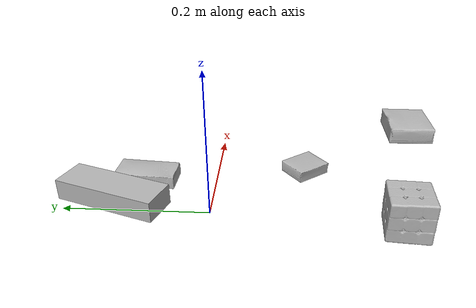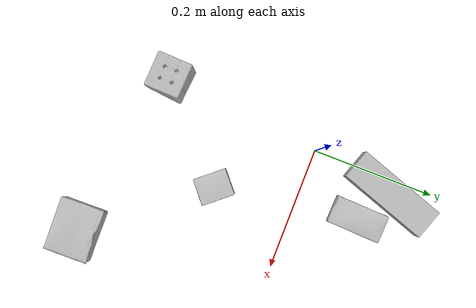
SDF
<sdf version="1.4">
  <world name="default">
    <light name="light1" type="point">
      <pose>0 0 1 0 0 0</pose>
      <diffuse>3 3 3 1</diffuse>
      <specular>3 3 3 1</specular>
    </light>
    <light name="light2" type="point">
      <pose>0 0.5 2 0 0 0</pose>
      <diffuse>1 1 1 1</diffuse>
      <specular>1 1 1 1</specular>
    </light>
    <light name="light3" type="point">
      <pose>0 0.5 2 0 0 0</pose>
      <diffuse>3 3 3 1</diffuse>
      <specular>3 3 3 1</specular>
    </light>
    <scene>
      <ambient>0.7 0.7 0.7</ambient>
    </scene>
    <model name="box1">
      <link name="link_box1">
        <collision name="default">
          <geometry>
            <mesh>
              <uri>model://jenga/collision_meshes/collision.obj</uri>
              <scale>1.0 1.0 1.0</scale>
            </mesh>
          </geometry>
          <surface>
            <friction>
              <ode>
                <mu>0.5</mu>
                <mu2>0.5</mu2>
              </ode>
            </friction>
          <contact>
        <ode>
            <max_vel>0</max_vel>
            <min_depth>0.0001</min_depth>
            <kp>1e8</kp>
        </ode>
    </contact></surface>
        </collision>
        <visual name="default">
          <geometry>
            <mesh>
              <uri>model://jenga/visual_meshes/visual.dae</uri>
              <scale>1.0 1.0 1.0</scale>
            </mesh>
          </geometry>
        </visual>
        <inertial>
          <mass>0.28879067301750183</mass>
          <pose>-2.502855807051674e-07 -0.00010250010382151231 -4.0923401684267446e-05 0.0 -7.342154049184251e-07 0.0</pose>
          <inertia>
            <ixx>7.991539e-05</ixx>
            <iyy>0.00054150453</iyy>
            <izz>0.00057810213</izz>
            <ixy>0</ixy>
            <ixz>0</ixz>
            <iyz>0</iyz>
          </inertia>
        </inertial>
      </link>
      <pose>0.022241784259676933 0.13633812963962555 0.014999998733401299 -6.121033238673178e-09 -1.909956086315785e-09 -1.9035529011671495</pose>
    </model>
    <model name="box2">
      <link name="link_box2">
        <collision name="default">
          <geometry>
            <mesh>
              <uri>model://sugar_box/collision_meshes/collision.obj</uri>
              <scale>0.5 0.5 0.5</scale>
            </mesh>
          </geometry>
          <surface>
            <friction>
              <ode>
                <mu>0.5</mu>
                <mu2>0.5</mu2>
              </ode>
            </friction>
          <contact>
        <ode>
            <max_vel>0</max_vel>
            <min_depth>0.0001</min_depth>
            <kp>1e8</kp>
        </ode>
    </contact></surface>
        </collision>
        <visual name="default">
          <geometry>
            <mesh>
              <uri>model://sugar_box/visual_meshes/visual.dae</uri>
              <scale>0.5 0.5 0.5</scale>
            </mesh>
          </geometry>
        </visual>
        <inertial>
          <mass>0.10389333218336105</mass>
          <pose>0.000517186417710036 1.9245549992774613e-05 -0.00018182402709499002 -0.00040462615469338603 0.0010506637547558321 0.0026153785561208315</pose>
          <inertia>
            <ixx>2.1640906e-05</ixx>
            <iyy>6.994788e-05</iyy>
            <izz>8.373595e-05</izz>
            <ixy>0</ixy>
            <ixz>0</ixz>
            <iyz>0</iyz>
          </inertia>
        </inertial>
      </link>
      <pose>0.07789146155118942 0.10134623199701309 0.011399303562939167 0.0007751631775590013 -0.02343246496766608 1.525588478542193</pose>
    </model>
    <model name="box3">
      <link name="link_box3">
        <collision name="default">
          <geometry>
            <mesh>
              <uri>model://rubiks_cube/collision_meshes/collision.obj</uri>
              <scale>1.0 1.0 1.0</scale>
            </mesh>
          </geometry>
          <surface>
            <friction>
              <ode>
                <mu>0.5</mu>
                <mu2>0.5</mu2>
              </ode>
            </friction>
          <contact>
        <ode>
            <max_vel>0</max_vel>
            <min_depth>0.0001</min_depth>
            <kp>1e8</kp>
        </ode>
    </contact></surface>
        </collision>
        <visual name="default">
          <geometry>
            <mesh>
              <uri>model://rubiks_cube/visual_meshes/visual.dae</uri>
              <scale>1.0 1.0 1.0</scale>
            </mesh>
          </geometry>
        </visual>
        <inertial>
          <mass>0.21973572671413422</mass>
          <pose>2.6721041649580002e-05 5.256966323941015e-05 -7.264316082000732e-06 -0.054673783840129137 -0.09814154164948871 -0.03445565380518822</pose>
          <inertia>
            <ixx>0.00012141874</ixx>
            <iyy>0.000120852514</iyy>
            <izz>0.00012242487</izz>
            <ixy>0</ixy>
            <ixz>0</ixz>
            <iyz>0</iyz>
          </inertia>
        </inertial>
      </link>
      <pose>-0.023850275203585625 -0.25477075576782227 0.028679003939032555 -1.791670496123767e-06 4.825216045720534e-07 -1.628211495263245</pose>
    </model>
    <model name="box4">
      <link name="link_box4">
        <collision name="default">
          <geometry>
            <mesh>
              <uri>model://pudding_box/collision_meshes/collision.obj</uri>
              <scale>0.5 0.5 0.5</scale>
            </mesh>
          </geometry>
          <surface>
            <friction>
              <ode>
                <mu>0.5</mu>
                <mu2>0.5</mu2>
              </ode>
            </friction>
          <contact>
        <ode>
            <max_vel>0</max_vel>
            <min_depth>0.0001</min_depth>
            <kp>1e8</kp>
        </ode>
    </contact></surface>
        </collision>
        <visual name="default">
          <geometry>
            <mesh>
              <uri>model://pudding_box/visual_meshes/visual.dae</uri>
              <scale>0.5 0.5 0.5</scale>
            </mesh>
          </geometry>
        </visual>
        <inertial>
          <mass>0.0391676165163517</mass>
          <pose>0.00024474109522998333 0.00040339428232982755 -0.0002594413817860186 0.005213101313254789 -0.0066037982630024914 0.020079830751203582</pose>
          <inertia>
            <ixx>1.1069244e-05</ixx>
            <iyy>7.447467e-06</iyy>
            <izz>1.634663e-05</izz>
            <ixy>0</ixy>
            <ixz>0</ixz>
            <iyz>0</iyz>
          </inertia>
        </inertial>
      </link>
      <pose>0.11264585703611374 -0.1306806206703186 0.00986290629953146 0.022348167695494473 -0.011391997366428123 0.7000704196229642</pose>
    </model>
    <model name="box5">
      <link name="link_box5">
        <collision name="default">
          <geometry>
            <mesh>
              <uri>model://gelatin_box/collision_meshes/collision.obj</uri>
              <scale>1.0 1.0 1.0</scale>
            </mesh>
          </geometry>
          <surface>
            <friction>
              <ode>
                <mu>0.5</mu>
                <mu2>0.5</mu2>
              </ode>
            </friction>
          <contact>
        <ode>
            <max_vel>0</max_vel>
            <min_depth>0.0001</min_depth>
            <kp>1e8</kp>
        </ode>
    </contact></surface>
        </collision>
        <visual name="default">
          <geometry>
            <mesh>
              <uri>model://gelatin_box/visual_meshes/visual.dae</uri>
              <scale>1.0 1.0 1.0</scale>
            </mesh>
          </geometry>
        </visual>
        <inertial>
          <mass>0.24157556891441345</mass>
          <pose>0.0004319618456065655 0.00011156872642459348 -0.0003640321083366871 -0.0010503718658393805 -0.0047558177571565665 0.016440565059328244</pose>
          <inertia>
            <ixx>0.00017053263</ixx>
            <iyy>0.00012181056</iyy>
            <izz>0.00025958868</izz>
            <ixy>0</ixy>
            <ixz>0</ixz>
            <iyz>0</iyz>
          </inertia>
        </inertial>
      </link>
      <pose>0.2549782395362854 -0.3115714192390442 0.015168312937021255 0.005596660144181545 -0.007303642629442964 1.581310992449428</pose>
    </model>
  <physics type="ode">
      <max_contacts>50</max_contacts>
      <ode>
        <solver>
          <type>quick</type>
          <iters>75</iters>
        </solver>
        <constraints>
          <contact_max_correcting_vel>0</contact_max_correcting_vel>
          <contact_surface_layer>0</contact_surface_layer>
        </constraints>
      </ode>
    </physics></world>
</sdf>
